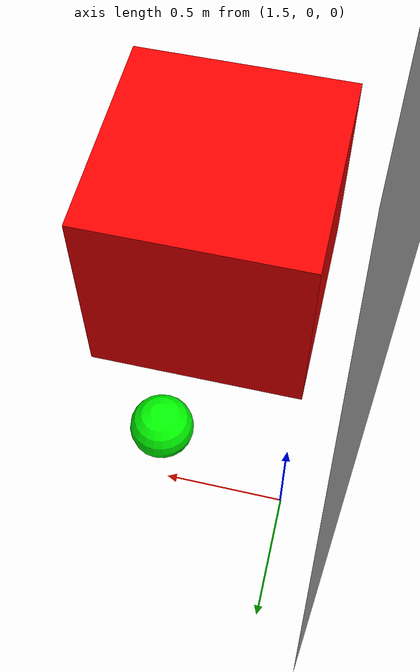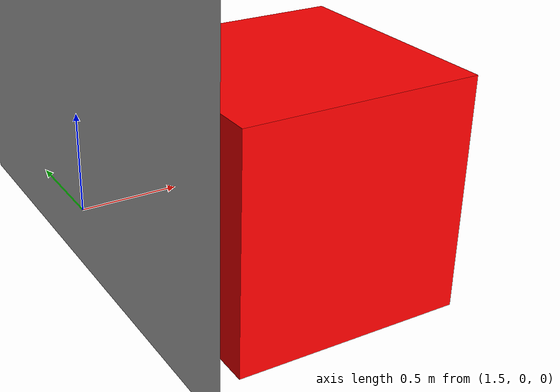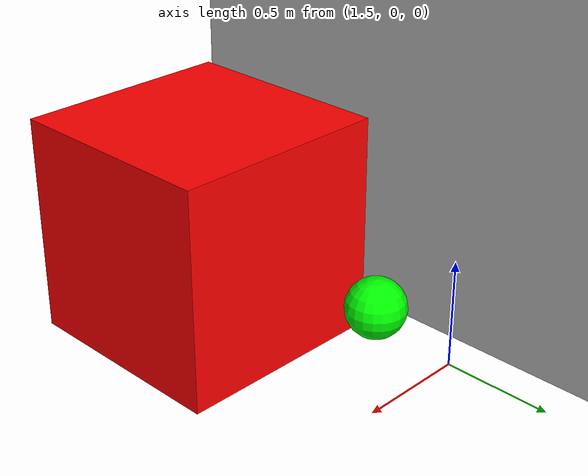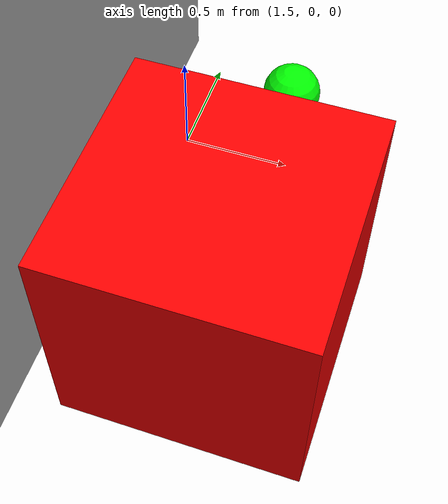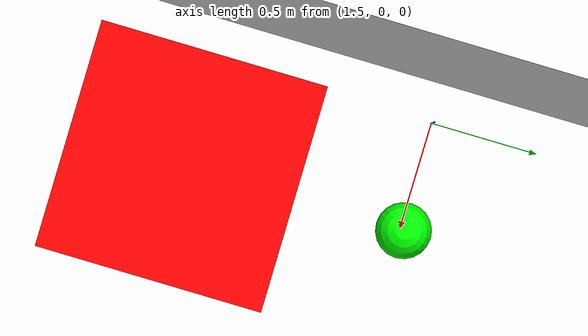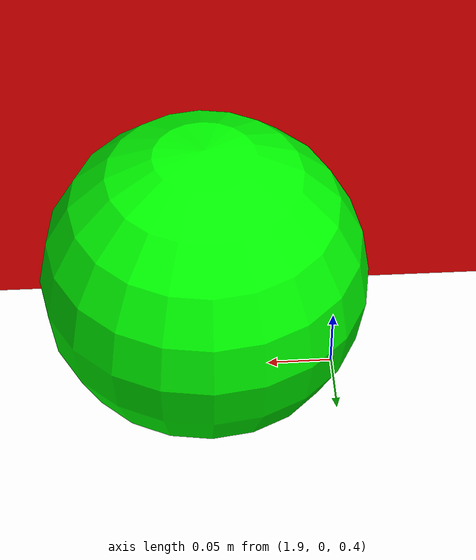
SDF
<?xml version="1.0" ?>
<sdf version="1.6">
  <world name="rov_simulation">

    <physics name="1ms" type="ode">
      <max_step_size>0.001</max_step_size>
      <real_time_factor>1.0</real_time_factor>
    </physics>
    <plugin
      filename="ignition-gazebo-physics-system"
      name="ignition::gazebo::systems::Physics">
    </plugin>
    <plugin
      filename="ignition-gazebo-sensors-system"
      name="ignition::gazebo::systems::Sensors">
      <render_engine>ogre</render_engine>
    </plugin>
    <plugin
      filename="ignition-gazebo-user-commands-system"
      name="ignition::gazebo::systems::UserCommands">
    </plugin>
    <plugin
      filename="ignition-gazebo-scene-broadcaster-system"
      name="ignition::gazebo::systems::SceneBroadcaster">
    </plugin>
    <plugin
      filename="ignition-gazebo-buoyancy-system"
      name="ignition::gazebo::systems::Buoyancy">
      <uniform_fluid_density>1000</uniform_fluid_density>
    </plugin>

    <gui fullscreen="0">

      <!-- 3D scene -->
      <plugin filename="GzScene3D" name="3D View">
        <ignition-gui>
          <title>3D View</title>
          <property type="bool" key="showTitleBar">true</property>
          <property type="string" key="state">docked</property>
        </ignition-gui>

        <engine>ogre</engine>
        <scene>scene</scene>
        <ambient_light>1.0 1.0 1.0</ambient_light>
        <background_color>0.8 0.8 0.8</background_color>
        <camera_pose>-1 0 1 0 0.5 0</camera_pose>
      </plugin>

      <!-- World control -->
      <plugin filename="WorldControl" name="World control">
        <ignition-gui>
          <title>World control</title>
          <property type="bool" key="showTitleBar">true</property>
          <property type="bool" key="resizable">true</property>
          <property type="double" key="height">72</property>
          <property type="double" key="width">121</property>
          <property type="double" key="z">1</property>

          <property type="string" key="state">floating</property>
          <anchors target="3D View">
            <line own="left" target="left"/>
            <line own="bottom" target="bottom"/>
          </anchors>
        </ignition-gui>

        <play_pause>true</play_pause>
        <step>true</step>
        <start_paused>true</start_paused>

      </plugin>

      <!-- World statistics -->
      <plugin filename="WorldStats" name="World stats">
        <ignition-gui>
          <title>World stats</title>
          <property type="bool" key="showTitleBar">false</property>
          <property type="bool" key="resizable">false</property>
          <property type="double" key="height">110</property>
          <property type="double" key="width">290</property>
          <property type="double" key="z">1</property>

          <property type="string" key="state">floating</property>
          <anchors target="3D View">
            <line own="right" target="right"/>
            <line own="bottom" target="bottom"/>
          </anchors>
        </ignition-gui>

        <sim_time>true</sim_time>
        <real_time>true</real_time>
        <real_time_factor>true</real_time_factor>
        <iterations>true</iterations>
      </plugin>

      <plugin filename="ImageDisplay" name="Image Display">
        <ignition-gui>
          <property key="state" type="string">docked</property>
        </ignition-gui>
      </plugin>
    </gui>

    <light type="directional" name="sun">
      <cast_shadows>true</cast_shadows>
      <pose>0 0 10 0 0 0</pose>
      <diffuse>1 1 1 1</diffuse>
      <specular>0.5 0.5 0.5 1</specular>
      <attenuation>
        <range>1000</range>
        <constant>0.9</constant>
        <linear>0.01</linear>
        <quadratic>0.001</quadratic>
      </attenuation>
      <direction>-0.5 0.1 -0.9</direction>
    </light>

    <model name="box">
      <pose>2 -1 0.5 0 0 0</pose>
      <static>true</static>
      <link name="box_link">
        <collision name="box_collision">
          <geometry>
            <box>
              <size>1 1 1</size>
            </box>
          </geometry>
        </collision>

        <visual name="box_visual">
          <geometry>
            <box>
              <size>1 1 1</size>
            </box>
          </geometry>
          <material>
            <ambient>1 0 0 1</ambient>
            <diffuse>1 0 0 1</diffuse>
            <specular>1 0 0 1</specular>
          </material>
        </visual>
      </link>
    </model>

    <model name="sphere">
      <static>true</static>
      <pose>2 0 0.5 0 0 0</pose>
      <link name="sphere_link">
        <collision name="sphere_collision">
          <geometry>
            <sphere>
              <radius>0.125</radius>
            </sphere>
          </geometry>
        </collision>
        <visual name="sphere_visual">
          <geometry>
            <sphere>
              <radius>0.125</radius>
            </sphere>
          </geometry>
          <material>
            <ambient>0 1 0 1</ambient>
            <diffuse>0 1 0 1</diffuse>
            <specular>0 1 0 1</specular>
          </material>
          <cast_shadows>false</cast_shadows>
        </visual>
      </link>
    </model>

	  <model name="pool">
      <pose>-10.4 0 0  0 0 0</pose>
      <static>true</static>
      <link name="body">
        <visual name="visual">
          <geometry>
            <mesh>
            <uri>file://pool.dae</uri>
          </mesh>
          </geometry>
        </visual>
        <collision name="collision">
          <geometry>
            <mesh>
              <uri>file://pool.dae</uri>
            </mesh>
          </geometry>
        </collision>
      </link>
    </model>

  </world>

</sdf>
